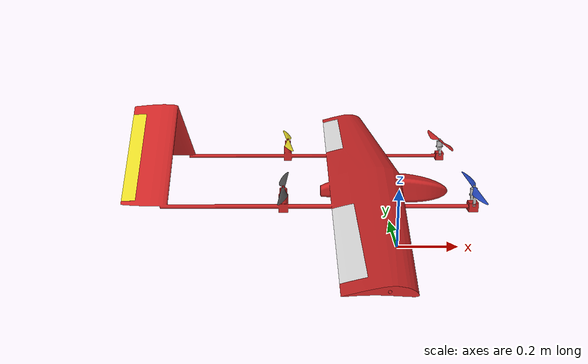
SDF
<?xml version='1.0'?>
<sdf version='1.5'>
  <model name='tilt_rotor'>
    <pose>0 0 0.246 0 0 0</pose>
    <link name='base_link'>
      <pose>0 0 0 0 0 0</pose>
      <inertial>
        <pose frame=''>-0.12786 -4e-06 -0.005044 0 -0 0</pose>
        <mass>0.90187</mass>
        <inertia>
	  <ixx>0.197563</ixx>
          <ixy>0</ixy>
          <ixz>0</ixz>
          <iyy>0.1458929</iyy>
          <iyz>0</iyz>
          <izz>0.1477</izz>
        </inertia>
      </inertial>
      <collision name='base_link_collision'>
        <pose>-0.01 0 -0.08 0 0 0</pose>
        <geometry>
	   <mesh>
            <scale>1 1 1</scale>
            <uri>model://tilt_rotor/meshes/base_link.STL</uri>
          </mesh>
        </geometry>
	<surface>
          <contact>
            <ode>
              <max_vel>10</max_vel>
              <min_depth>0.01</min_depth>
            </ode>
          </contact>
        </surface>
      </collision>
      <visual name='base_link_visual'>
        <pose>0 0 0 0 -0 0</pose>
        <geometry>
          <mesh>
            <scale>1 1 1</scale>
            <uri>model://tilt_rotor/meshes/base_link.STL</uri>
          </mesh>
        </geometry>
        <material>
          <script>
            <name>Gazebo/Red</name>
            <uri>__default__</uri>
          </script>
        </material>
      </visual>

      <gravity>1</gravity>
      <velocity_decay/>
      <self_collide>0</self_collide>
    </link>

    <link name='servo_motor_front_right'>
      <pose frame=''>0.168 -0.20986 0.003 0 -0 0</pose>
      <inertial>
        <pose frame=''>-0 -0.015 0.030513 0 -0 0</pose>
        <mass>0.061036</mass>
        <inertia>
          <ixx>8.5593e-06</ixx>
          <ixy>3.1994e-23</ixy>
          <ixz>3.4129e-22</ixz>
          <iyy>7.1825e-06</iyy>
          <iyz>3.6464e-21</iyz>
          <izz>4.223e-06</izz>
        </inertia>
      </inertial>
      <collision name='servo_motor_front_right_collision'>
        <pose frame=''>0 0 0 0 -0 0</pose>
        <geometry>
          <mesh>
            <scale>1 1 1</scale>
            <uri>model://tilt_rotor/meshes/motor_front_right.STL</uri>
          </mesh>
        </geometry>
      </collision>
      <visual name='servo_motor_front_right_visual'>
        <pose frame=''>0 0 0 0 -0 0</pose>
        <geometry>
          <mesh>
            <scale>1 1 1</scale>
            <uri>model://tilt_rotor/meshes/motor_front_right.STL</uri>
          </mesh>
        </geometry>
      </visual>
    </link>
    <joint name='servo_front_right_joint' type='revolute'>
      <child>servo_motor_front_right</child>
      <parent>base_link</parent>
      <axis>
        <xyz>0 1 0</xyz>
        <limit>
          <lower>-0.017453</lower>
          <upper>1.5708</upper>
        </limit>
        <dynamics>
          <spring_reference>0</spring_reference>
          <spring_stiffness>0</spring_stiffness>
        </dynamics>
        <use_parent_model_frame>1</use_parent_model_frame>

      </axis>
    </joint>
    <link name='servo_motor_front_left'>
      <pose frame=''>0.168 0.20986 0.003 0 -0 0</pose>
      <inertial>
        <pose frame=''>0 0.015 0.030513 0 -0 0</pose>
        <mass>0.061036</mass>
        <inertia>
          <ixx>8.5593e-06</ixx>
          <ixy>-3.4497e-22</ixy>
          <ixz>-9.3615e-23</ixz>
          <iyy>7.1825e-06</iyy>
          <iyz>9.892e-21</iyz>
          <izz>4.223e-06</izz>
        </inertia>
      </inertial>
      <collision name='servo_motor_front_left_collision'>
        <pose frame=''>0 0 0 0 -0 0</pose>
        <geometry>
          <mesh>
            <scale>1 1 1</scale>
            <uri>model://tilt_rotor/meshes/motor_front_left.STL</uri>
          </mesh>
        </geometry>
      </collision>
      <visual name='servo_motor_front_left_visual'>
        <pose frame=''>0 0 0 0 -0 0</pose>
        <geometry>
          <mesh>
            <scale>1 1 1</scale>
            <uri>model://tilt_rotor/meshes/motor_front_left.STL</uri>
          </mesh>
        </geometry>
      </visual>
    </link>
    <joint name='servo_front_left_joint' type='revolute'>
      <child>servo_motor_front_left</child>
      <parent>base_link</parent>
      <axis>
        <xyz>0 1 0</xyz>
        <limit>
          <lower>-0.017453</lower>
          <upper>1.5708</upper>
        </limit>
        <dynamics>
          <spring_reference>0</spring_reference>
          <spring_stiffness>0</spring_stiffness>
        </dynamics>
        <use_parent_model_frame>1</use_parent_model_frame>
      </axis>
    </joint>
    <link name='tilt_rotor/imu_link'>
      <pose>0 0 0 0 0 0</pose>
      <inertial>
        <pose>0 0 0 0 0 0</pose>
        <mass>0.015</mass>
        <inertia>
          <ixx>1e-05</ixx>
          <ixy>0</ixy>
          <ixz>0</ixz>
          <iyy>1e-05</iyy>
          <iyz>0</iyz>
          <izz>1e-05</izz>
        </inertia>
      </inertial>
      <sensor name="imu_sensor" type="imu">
        <pose>0 0 0 3.141593 0 0</pose>
        <always_on>1</always_on>
        <update_rate>1000.0</update_rate>
      </sensor>
    </link>
    <joint name='tilt_rotor/imu_joint' type='revolute'>
      <child>tilt_rotor/imu_link</child>
      <parent>base_link</parent>
      <axis>
        <xyz>1 0 0</xyz>
        <limit>
          <lower>0</lower>
          <upper>0</upper>
          <effort>0</effort>
          <velocity>0</velocity>
        </limit>
        <dynamics>
          <spring_reference>0</spring_reference>
          <spring_stiffness>0</spring_stiffness>
        </dynamics>
        <use_parent_model_frame>1</use_parent_model_frame>
      </axis>
    </joint>

    <link name='ruddervator_left'>
      <pose frame=''>-0.775 0.11193 0.11193 -0.79348 0.12648 -0.1275</pose>
      <inertial>
        <pose frame=''>-0.009877 0.010141 -0.001818 0 -0 0</pose>
        <mass>0.0013457</mass>
        <inertia>
          <ixx>8.7475e-06</ixx>
          <ixy>8.2912e-15</ixy>
          <ixz>-2.1964e-08</ixz>
          <iyy>1.3526e-07</iyy>
          <iyz>-3.8536e-14</iyz>
          <izz>8.8628e-06</izz>
        </inertia>
      </inertial>
      <visual name='ruddervator_left_visual'>
        <pose frame=''>0 0 0 0 -0 0</pose>
        <geometry>
          <mesh>
            <scale>1 1 1</scale>
            <uri>model://tilt_rotor/meshes/ruddervator_left.STL</uri>
          </mesh>
        </geometry>
	<material>
          <script>
            <name>Gazebo/Yellow</name>
            <uri>__default__</uri>
          </script>
        </material>
      </visual>
    </link>
    <joint name='ruddervator_left_joint' type='revolute'>
      <child>ruddervator_left</child>
      <parent>base_link</parent>
      <axis>
        <xyz>-2e-06 0.707109 -0.707105</xyz>
        <limit>
          <lower>-0.5236</lower>
          <upper>0.5236</upper>
        </limit>
        <dynamics>
          <damping>1.000</damping>
        </dynamics>
	<use_parent_model_frame>1</use_parent_model_frame>
      </axis>
      <physics>
        <ode>
          <implicit_spring_damper>1</implicit_spring_damper>
        </ode>
      </physics>
    </joint>

    <link name='ruddervator_right'>
      <pose frame=''>-0.775 -0.11193 0.11193 0.7854 0.003309 0.003309</pose>
      <inertial>
        <pose frame=''>-0.010043 -0.010141 9.2e-05 0 -0 0</pose>
        <mass>0.0013457</mass>
        <inertia>
          <ixx>8.74347e-06</ixx>
          <ixy>-1.54079e-15</ixy>
          <ixz>1.13388e-09</ixz>
          <iyy>1.35259e-07</iyy>
          <iyz>-3.93914e-14</iyz>
          <izz>8.86684e-06</izz>
        </inertia>
      </inertial>
      <visual name='ruddervator_right_visual'>
        <pose frame=''>0 0 0 0 -0 0</pose>
        <geometry>
          <mesh>
            <scale>1 1 1</scale>
            <uri>model://tilt_rotor/meshes/ruddervator_right.STL</uri>
          </mesh>
        </geometry>
	<material>
          <script>
            <name>Gazebo/Yellow</name>
            <uri>__default__</uri>
          </script>
        </material>
      </visual>
    </link>
    <joint name='ruddervator_right_joint' type='revolute'>
      <child>ruddervator_right</child>
      <parent>base_link</parent>
      <axis>
        <xyz>-0 0.707109 0.707104</xyz>
        <limit>
          <lower>-0.523599</lower>
          <upper>0.523599</upper>
        </limit>
        <dynamics>
          <damping>1.000</damping>
        </dynamics>
	<use_parent_model_frame>1</use_parent_model_frame>
      </axis>
      <physics>
        <ode>
          <implicit_spring_damper>1</implicit_spring_damper>
        </ode>
      </physics>
    </joint>
    <link name='motor_1'>
      <pose>0.168 -0.22486 0.041843 0 -0 0</pose>
      <inertial>
        <pose frame=''>0 0 0 0 -0 0</pose>
        <mass>0.0054051</mass>
        <inertia>
          <ixx>9.75e-07</ixx>
          <ixy>0</ixy>
          <ixz>0</ixz>
          <iyy>0.000166704</iyy>
          <iyz>0</iyz>
          <izz>0.000167604</izz>
        </inertia>
      </inertial>
      <collision name='motor_1_collision'>
        <pose>0 0 0 0 -0 0</pose>
        <geometry>
	  <mesh>
            <scale>1 1 1</scale>
            <uri>model://tilt_rotor/meshes/propeller_front_right.STL</uri>
          </mesh>
        </geometry>
        <surface>
          <contact>
            <ode/>
          </contact>
          <friction>
            <ode/>
          </friction>
        </surface>
      </collision>
      <visual name='motor_1_visual'>
        <pose>0 0 0 0 -0 0</pose>
        <geometry>
          <mesh>
            <scale>1 1 1</scale>
            <uri>model://tilt_rotor/meshes/propeller_front_right.STL</uri>
          </mesh>
        </geometry>
        <material>
          <script>
            <name>Gazebo/Blue</name>
            <uri>__default__</uri>
          </script>
        </material>
      </visual>
      <gravity>1</gravity>
      <velocity_decay/>
      <self_collide>0</self_collide>
    </link>
    <joint name='motor_1_joint' type='revolute'>
      <child>motor_1</child>
      <parent>servo_motor_front_right</parent>
      <axis>
        <xyz>0 0 1</xyz>
        <limit>
          <lower>-1e+16</lower>
          <upper>1e+16</upper>
        </limit>
        <dynamics>
          <spring_reference>0</spring_reference>
          <spring_stiffness>0</spring_stiffness>
        </dynamics>
        <use_parent_model_frame>1</use_parent_model_frame>
      </axis>
    </joint>
    <link name='motor_2'>
       <pose>-0.358 0.22486 0.041843 0 -0 0</pose>
      <inertial>
	<pose frame=''>-0 0 0.006535 0 -0 0</pose>
        <mass>0.0054051</mass>
        <inertia>
          <ixx>9.75e-07</ixx>
          <ixy>0</ixy>
          <ixz>0</ixz>
          <iyy>0.000166704</iyy>
          <iyz>0</iyz>
          <izz>0.000167604</izz>
        </inertia>
      </inertial>
      <collision name='motor_2_collision'>
        <pose>0 0 0 0 0 0</pose>
        <geometry>
          <mesh>
            <scale>1 1 1</scale>
            <uri>model://tilt_rotor/meshes/propeller_rear_left.STL</uri>
          </mesh>
        </geometry>
        <surface>
          <contact>
            <ode/>
          </contact>
          <friction>
            <ode/>
          </friction>
        </surface>
      </collision>
      <visual name='motor_2_visual'>
        <pose>0 0 0 0 0 0</pose>
        <geometry>
          <mesh>
            <scale>1 1 1</scale>
            <uri>model://tilt_rotor/meshes/propeller_rear_left.STL</uri>
          </mesh>
        </geometry>
        <material>
          <script>
            <name>Gazebo/Yellow</name>
            <uri>__default__</uri>
          </script>
        </material>
      </visual>
      <gravity>1</gravity>
      <velocity_decay/>
      <self_collide>0</self_collide>
    </link>
    <joint name='motor_2_joint' type='revolute'>
      <child>motor_2</child>
      <parent>base_link</parent>
      <axis>
        <xyz>0 0 1</xyz>
        <limit>
          <lower>-1e+16</lower>
          <upper>1e+16</upper>
        </limit>
        <dynamics>
          <spring_reference>0</spring_reference>
          <spring_stiffness>0</spring_stiffness>
        </dynamics>
        <use_parent_model_frame>1</use_parent_model_frame>
      </axis>
    </joint>
    <link name='motor_3'>
      <pose>0.168 0.22486 0.041843 0 -0 0</pose>
      <inertial>
        <pose frame=''>0 0 0.006535 0 -0 0</pose>
        <mass>0.0054054</mass>
        <inertia>
          <ixx>9.75e-07</ixx>
          <ixy>0</ixy>
          <ixz>0</ixz>
          <iyy>0.000166704</iyy>
          <iyz>0</iyz>
          <izz>0.000167604</izz>
        </inertia>
      </inertial>
      <collision name='motor_3_collision'>
        <pose>0 0 0 0 -0 0</pose>
        <geometry>
          <mesh>
            <scale>1 1 1</scale>
            <uri>model://tilt_rotor/meshes/propeller_front_left.STL</uri>
          </mesh>
        </geometry>
        <surface>
          <contact>
            <ode/>
          </contact>
          <friction>
            <ode/>
          </friction>
        </surface>
      </collision>
      <visual name='motor_3_visual'>
        <pose>0 0 0 0 -0 0</pose>
        <geometry>
          <mesh>
            <scale>1 1 1</scale>
            <uri>model://tilt_rotor/meshes/propeller_front_left.STL</uri>
          </mesh>
        </geometry>
        <material>
          <script>
            <name>Gazebo/Red</name>
            <uri>__default__</uri>
          </script>
        </material>
      </visual>
      <gravity>1</gravity>
      <velocity_decay/>
      <self_collide>0</self_collide>
    </link>
    <joint name='motor_3_joint' type='revolute'>
      <child>motor_3</child>
      <parent>servo_motor_front_left</parent>
      <axis>
        <xyz>0 0 1</xyz>
        <limit>
          <lower>-1e+16</lower>
          <upper>1e+16</upper>
        </limit>
        <dynamics>
          <spring_reference>0</spring_reference>
          <spring_stiffness>0</spring_stiffness>
        </dynamics>
        <use_parent_model_frame>1</use_parent_model_frame>
      </axis>
    </joint>
    <link name='motor_4'>
      <pose>-0.358 -0.22486 0.041843 0 -0 0</pose>
      <inertial>
        <pose frame=''>-0 0 0 0 -0 0</pose>
        <mass>0.005</mass>
        <inertia>
          <ixx>9.75e-07</ixx>
          <ixy>0</ixy>
          <ixz>0</ixz>
          <iyy>0.000166704</iyy>
          <iyz>0</iyz>
          <izz>0.000167604</izz>
        </inertia>
      </inertial>
      <collision name='motor_4_collision'>
        <pose>0 0 0 0 -0 0</pose>
        <geometry>
          <mesh>
            <scale>1 1 1</scale>
            <uri>model://tilt_rotor/meshes/propeller_rear_right.STL</uri>
          </mesh>
        </geometry>
        <surface>
          <contact>
            <ode/>
          </contact>
          <friction>
            <ode/>
          </friction>
        </surface>
      </collision>
      <visual name='motor_4_visual'>
        <pose>0 0 0 0 -0 0</pose>
        <geometry>
          <mesh>
            <scale>1 1 1</scale>
            <uri>model://tilt_rotor/meshes/propeller_rear_right.STL</uri>
          </mesh>
        </geometry>
        <material>
          <script>
            <name>Gazebo/DarkGrey</name>
            <uri>__default__</uri>
          </script>
        </material>
      </visual>
      <gravity>1</gravity>
      <velocity_decay/>
      <self_collide>0</self_collide>
    </link>
    <joint name='motor_4_joint' type='revolute'>
      <child>motor_4</child>
      <parent>base_link</parent>
      <axis>
        <xyz>0 0 1</xyz>
        <limit>
          <lower>-1e+16</lower>
          <upper>1e+16</upper>
        </limit>
        <dynamics>
          <spring_reference>0</spring_reference>
          <spring_stiffness>0</spring_stiffness>
        </dynamics>
        <use_parent_model_frame>1</use_parent_model_frame>
      </axis>
    </joint>

    <link name="left_elevon">
      <pose frame=''>-0.16997 0.2 0.005812 0 -0 0</pose>
      <inertial>
 	<pose frame=''>-0.016756 0.24939 -0.003295 0 -0 0</pose>
        <mass>0.0038016</mass>
        <inertia>
	  <ixx>0.000001</ixx>
          <ixy>0.0</ixy>
          <iyy>0.000001</iyy>
          <ixz>0.0</ixz>
          <iyz>0.0</iyz>
          <izz>0.000001</izz>
        </inertia>
      </inertial>
      <visual name='left_elevon_visual'>
        <pose>0 0 0 0 -0 0</pose>
        <geometry>
          <mesh>
            <scale>1 1 1</scale>
            <uri>model://tilt_rotor/meshes/aileron_left.STL</uri>
          </mesh>
        </geometry>
        <material>
          <script>
            <name>Gazebo/White</name>
            <uri>__default__</uri>
          </script>
        </material>
      </visual>
    </link>
    <link name="right_elevon">
      <pose frame=''>-0.16997 -0.2 0.005812 0 -0 0</pose>
      <inertial>
	<pose frame=''>-0.016759 -0.25061 -0.003282 0 -0 0</pose>
        <mass>0.0038016</mass>
        <inertia>
          <ixx>0.000001</ixx>
          <ixy>0.0</ixy>
          <iyy>0.000001</iyy>
          <ixz>0.0</ixz>
          <iyz>0.0</iyz>
          <izz>0.000001</izz>
        </inertia>
      </inertial>
      <visual name='right_elevon_visual'>
        <pose frame=''>0 0 0 0 -0 0</pose>
        <geometry>
          <mesh>
            <scale>1 1 1</scale>
            <uri>model://tilt_rotor/meshes/aileron_right.STL</uri>
          </mesh>
        </geometry>
        <material>
          <script>
            <name>Gazebo/White</name>
            <uri>__default__</uri>
          </script>
        </material>
      </visual>
    </link>
    <joint name='left_elevon_joint' type='revolute'>
      <parent>base_link</parent>
      <child>left_elevon</child>
      <axis>
        <xyz>0 1 0</xyz>
        <limit>
          <lower>-0.5236</lower>
          <upper>0.5236</upper>
        </limit>
        <dynamics>
          <damping>1.000</damping>
        </dynamics>
      </axis>
      <physics>
        <ode>
          <implicit_spring_damper>1</implicit_spring_damper>
        </ode>
      </physics>
    </joint>
    <joint name='right_elevon_joint' type='revolute'>
      <parent>base_link</parent>
      <child>right_elevon</child>
      <axis>
        <xyz>0 1 0</xyz>
        <limit>
          <lower>-0.5236</lower>
          <upper>0.5236</upper>
        </limit>
        <dynamics>
          <damping>1.000</damping>
        </dynamics>
      </axis>
      <physics>
        <ode>
          <implicit_spring_damper>1</implicit_spring_damper>
        </ode>
      </physics>
    </joint>

    <plugin name="left_wing" filename="libLiftDragPlugin.so">
      <a0>0.05984281113</a0>
      <cla>4.752798721</cla>
      <cda>0.6417112299</cda>
      <cma>-1.8</cma>
      <alpha_stall>0.3391428111</alpha_stall>
      <cla_stall>-3.85</cla_stall>
      <cda_stall>-0.9233984055</cda_stall>
      <cma_stall>0</cma_stall>
      <cp>-0.05 0.3 0.05</cp>
      <area>0.12</area>
      <air_density>1.2041</air_density>
      <forward>1 0 0</forward>
      <upward>0 0 1</upward>
      <link_name>base_link</link_name>
      <control_joint_name>
        left_elevon_joint
      </control_joint_name>
      <control_joint_rad_to_cl>-0.5</control_joint_rad_to_cl>
    </plugin>
    <plugin name="right_wing" filename="libLiftDragPlugin.so">
      <a0>0.05984281113</a0>
      <cla>4.752798721</cla>
      <cda>0.6417112299</cda>
      <cma>-1.8</cma>
      <alpha_stall>0.3391428111</alpha_stall>
      <cla_stall>-3.85</cla_stall>
      <cda_stall>-0.9233984055</cda_stall>
      <cma_stall>0</cma_stall>
      <cp>-0.05 -0.3 0.05</cp>
      <area>0.12</area>
      <air_density>1.2041</air_density>
      <forward>1 0 0</forward>
      <upward>0 0 1</upward>
      <link_name>base_link</link_name>
      <control_joint_name>
        right_elevon_joint
      </control_joint_name>
      <control_joint_rad_to_cl>-0.5</control_joint_rad_to_cl>
    </plugin>

<plugin name="left_tail" filename="libLiftDragPlugin.so">
      <a0>0.0</a0>
      <cla>4.752798721</cla>
      <cda>0.6417112299</cda>
      <cma>-1.8</cma>
      <alpha_stall>0.3391428111</alpha_stall>
      <cla_stall>-3.85</cla_stall>
      <cda_stall>-0.9233984055</cda_stall>
      <cma_stall>0</cma_stall>
      <cp>-0.5 0 0.05</cp>
      <area>0.02</area>
      <air_density>1.2041</air_density>
      <forward>1 0 0</forward>
      <upward>0 1 0</upward>
      <link_name>base_link</link_name>
      <control_joint_name>
        ruddervator_left_joint
      </control_joint_name>
      <control_joint_rad_to_cl>-4.0</control_joint_rad_to_cl>
    </plugin>

    <plugin name="right_tail" filename="libLiftDragPlugin.so">
      <a0>0.0</a0>
      <cla>4.752798721</cla>
      <cda>0.6417112299</cda>
      <cma>-1.8</cma>
      <alpha_stall>0.3391428111</alpha_stall>
      <cla_stall>-3.85</cla_stall>
      <cda_stall>-0.9233984055</cda_stall>
      <cma_stall>0</cma_stall>
      <cp>-0.5 0 0.05</cp>
      <area>0.02</area>
      <air_density>1.2041</air_density>
      <forward>1 0 0</forward>
      <upward>0 1 0</upward>
      <link_name>base_link</link_name>
      <control_joint_name>
        ruddervator_right_joint
      </control_joint_name>
      <control_joint_rad_to_cl>-4.0</control_joint_rad_to_cl>
    </plugin>

    <plugin name="motor_1_blade_1" filename="libLiftDragPlugin.so">
      <a0>0.3</a0>
      <alpha_stall>1.4</alpha_stall>
      <cla>4.2500</cla>
      <cda>0.10</cda>
      <cma>0.00</cma>
      <cla_stall>-0.025</cla_stall>
      <cda_stall>0.0</cda_stall>
      <cma_stall>0.0</cma_stall>
      <area>0.005</area>
      <air_density>1.2041</air_density>
       <cp>0 0.063 0</cp>
      <forward>-1 0 0</forward>
      <upward>0 0 1</upward>
      <link_name>motor_1</link_name>
    </plugin>
    <plugin name="motor_1_blade_2" filename="libLiftDragPlugin.so">
      <a0>0.3</a0>
      <alpha_stall>1.4</alpha_stall>
      <cla>4.2500</cla>
      <cda>0.10</cda>
      <cma>0.00</cma>
      <cda_stall>0.0</cda_stall>
      <cla_stall>-0.025</cla_stall>
      <cma_stall>0.0</cma_stall>
      <area>0.005</area>
      <air_density>1.2041</air_density>
      <cp>0  -0.063 0</cp>
      <forward>1 0 0</forward>
      <upward>0 0 1</upward>
      <link_name>motor_1</link_name>
    </plugin>

    <plugin name="motor_2_blade_1" filename="libLiftDragPlugin.so">
      <a0>0.3</a0>
      <alpha_stall>1.4</alpha_stall>
      <cla>4.2500</cla>
      <cda>0.10</cda>
      <cma>0.00</cma>
      <cla_stall>-0.025</cla_stall>
      <cda_stall>0.0</cda_stall>
      <cma_stall>0.0</cma_stall>
      <area>0.005</area>
      <air_density>1.2041</air_density>
       <cp>0 0.063 0</cp>
      <forward>-1 0 0</forward>
      <upward>0 0 1</upward>
      <link_name>motor_2</link_name>
    </plugin>
    <plugin name="motor_2_blade_2" filename="libLiftDragPlugin.so">
      <a0>0.3</a0>
      <alpha_stall>1.4</alpha_stall>
      <cla>4.2500</cla>
      <cda>0.10</cda>
      <cma>0.00</cma>
      <cda_stall>0.0</cda_stall>
      <cla_stall>-0.025</cla_stall>
      <cma_stall>0.0</cma_stall>
      <area>0.005</area>
      <air_density>1.2041</air_density>
      <cp>0  -0.063 0</cp>
      <forward>1 0 0</forward>
      <upward>0 0 1</upward>
      <link_name>motor_2</link_name>
    </plugin>

    <plugin name="motor_3_blade_1" filename="libLiftDragPlugin.so">
      <a0>0.3</a0>
      <alpha_stall>1.4</alpha_stall>
      <cla>4.2500</cla>
      <cda>0.10</cda>
      <cma>0.00</cma>
      <cla_stall>-0.025</cla_stall>
      <cda_stall>0.0</cda_stall>
      <cma_stall>0.0</cma_stall>
      <area>0.005</area>
      <air_density>1.2041</air_density>
       <cp>0 0.063 0</cp>
      <forward>1 0 0</forward>
      <upward>0 0 1</upward>
      <link_name>motor_3</link_name>
    </plugin>
    <plugin name="motor_3_blade_2" filename="libLiftDragPlugin.so">
      <a0>0.3</a0>
      <alpha_stall>1.4</alpha_stall>
      <cla>4.2500</cla>
      <cda>0.10</cda>
      <cma>0.00</cma>
      <cda_stall>0.0</cda_stall>
      <cla_stall>-0.025</cla_stall>
      <cma_stall>0.0</cma_stall>
      <area>0.005</area>
      <air_density>1.2041</air_density>
      <cp>0  -0.063 0</cp>
      <forward>-1 0 0</forward>
      <upward>0 0 1</upward>
      <link_name>motor_3</link_name>
    </plugin>

    <plugin name="motor_4_blade_1" filename="libLiftDragPlugin.so">
      <a0>0.3</a0>
      <alpha_stall>1.4</alpha_stall>
      <cla>4.2500</cla>
      <cda>0.10</cda>
      <cma>0.00</cma>
      <cla_stall>-0.025</cla_stall>
      <cda_stall>0.0</cda_stall>
      <cma_stall>0.0</cma_stall>
      <area>0.005</area>
      <air_density>1.2041</air_density>
      <cp>0 0.063 0</cp>
      <forward>1 0 0</forward>
      <upward>0 0 1</upward>
      <link_name>motor_4</link_name>
    </plugin>
    <plugin name="motor_4_blade_2" filename="libLiftDragPlugin.so">
      <a0>0.3</a0>
      <alpha_stall>1.4</alpha_stall>
      <cla>4.2500</cla>
      <cda>0.10</cda>
      <cma>0.00</cma>
      <cda_stall>0.0</cda_stall>
      <cla_stall>-0.025</cla_stall>
      <cma_stall>0.0</cma_stall>
      <area>0.005</area>
      <air_density>1.2041</air_density>
      <cp>0  -0.063 0</cp>
      <forward>-1 0 0</forward>
      <upward>0 0 1</upward>
      <link_name>motor_4</link_name>
    </plugin>
    <plugin name="arducopter_plugin" filename="libArduPilotPlugin.so">
      <fdm_addr>127.0.0.1</fdm_addr>
      <fdm_port_in>9002</fdm_port_in>
      <fdm_port_out>9003</fdm_port_out>
      <!--
          Require by APM :
          Only change model and gazebo from XYZ to XY-Z coordinates
      -->
      <modelXYZToAirplaneXForwardZDown>0 0 0 3.141593 0 0</modelXYZToAirplaneXForwardZDown>
      <gazeboXYZToNED>0 0 0 3.141593 0 0</gazeboXYZToNED>
      <imuName>tilt_rotor/imu_link::imu_sensor</imuName>
      <connectionTimeoutMaxCount>5</connectionTimeoutMaxCount>
      <control channel="0">
        <multiplier>-1</multiplier>
        <offset>-0.5</offset>
        <type>POSITION</type>
        <p_gain>10.0</p_gain>
        <i_gain>0</i_gain>
        <d_gain>0</d_gain>
        <i_max>0</i_max>
        <i_min>0</i_min>
        <cmd_max>2.0</cmd_max>
        <cmd_min>-2.0</cmd_min>
        <jointName>servo_front_left_joint</jointName>
      </control>
      <control channel="1">
        <multiplier>-1</multiplier>
        <offset>-0.5</offset>
        <type>POSITION</type>
        <p_gain>10.0</p_gain>
        <i_gain>0</i_gain>
        <d_gain>0</d_gain>
        <i_max>0</i_max>
        <i_min>0</i_min>
        <cmd_max>2.0</cmd_max>
        <cmd_min>-2.0</cmd_min>
        <jointName>servo_front_right_joint</jointName>
      </control>

      <control channel="4">
        <multiplier>1000</multiplier>
        <offset>0</offset>
        <type>VELOCITY</type>
        <p_gain>0.2</p_gain>
        <i_gain>0.2</i_gain>
        <d_gain>0.0</d_gain>
        <i_max>0</i_max>
        <i_min>0</i_min>
        <cmd_max>2.5</cmd_max>
        <cmd_min>-2.5</cmd_min>
        <jointName>motor_1_joint</jointName>
        <rotorVelocitySlowdownSim>1</rotorVelocitySlowdownSim>
      </control>

      <control channel="5">
        <multiplier>1000</multiplier>
        <offset>0</offset>
        <type>VELOCITY</type>
        <p_gain>0.2</p_gain>
        <i_gain>0.2</i_gain>
        <d_gain>0.0</d_gain>
        <i_max>0</i_max>
        <i_min>0</i_min>
        <cmd_max>2.5</cmd_max>
        <cmd_min>-2.5</cmd_min>
        <jointName>motor_2_joint</jointName>
        <rotorVelocitySlowdownSim>1</rotorVelocitySlowdownSim>
      </control>

      <control channel="6">
        <multiplier>-1000</multiplier>
        <offset>0</offset>
        <type>VELOCITY</type>
        <p_gain>0.2</p_gain>
        <i_gain>0.2</i_gain>
        <d_gain>0.0</d_gain>
        <i_max>0</i_max>
        <i_min>0</i_min>
        <cmd_max>2.5</cmd_max>
        <cmd_min>-2.5</cmd_min>
        <jointName>motor_3_joint</jointName>
        <rotorVelocitySlowdownSim>1</rotorVelocitySlowdownSim>
      </control>

      <control channel="7">
        <multiplier>-1000</multiplier>
        <offset>0</offset>
        <type>VELOCITY</type>
        <p_gain>0.2</p_gain>
        <i_gain>0.2</i_gain>
        <d_gain>0.0</d_gain>
        <i_max>0</i_max>
        <i_min>0</i_min>
        <cmd_max>2.5</cmd_max>
        <cmd_min>-2.5</cmd_min>
        <jointName>motor_4_joint</jointName>
        <rotorVelocitySlowdownSim>1</rotorVelocitySlowdownSim>
      </control>

      <control channel="9">
          <multiplier>1</multiplier>
          <offset>-0.5</offset>
          <type>POSITION</type>
          <p_gain>2.5</p_gain>
          <i_gain>0</i_gain>
          <d_gain>0</d_gain>
          <i_max>0</i_max>
          <i_min>0</i_min>
          <cmd_max>1</cmd_max>
          <cmd_min>-1</cmd_min>
        <jointName>left_elevon_joint</jointName>
      </control>

      <control channel="10">
        <multiplier>1</multiplier>
        <offset>-0.5</offset>
        <type>POSITION</type>
        <p_gain>2.5</p_gain>
        <i_gain>0</i_gain>
        <d_gain>0</d_gain>
        <i_max>0</i_max>
        <i_min>0</i_min>
        <cmd_max>1</cmd_max>
        <cmd_min>-1</cmd_min>
        <jointName>right_elevon_joint</jointName>
      </control>

    </plugin>

    <static>0</static>
  </model>
</sdf>
